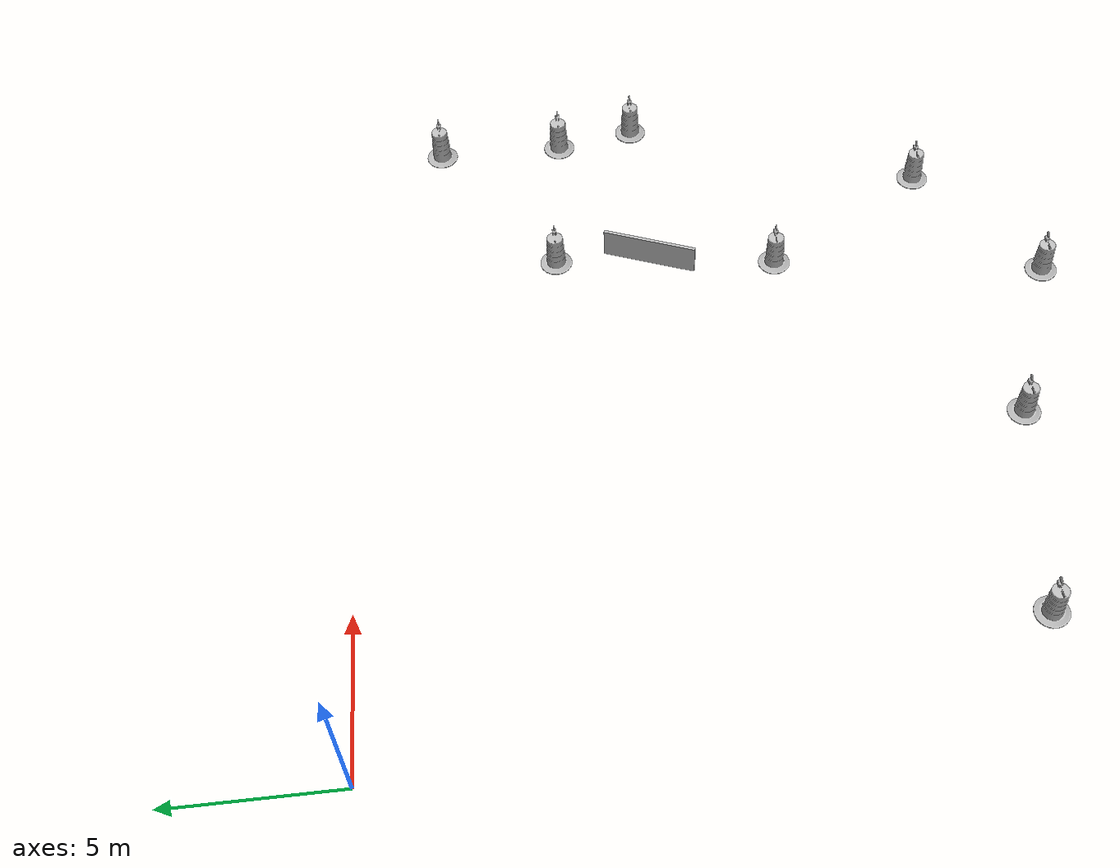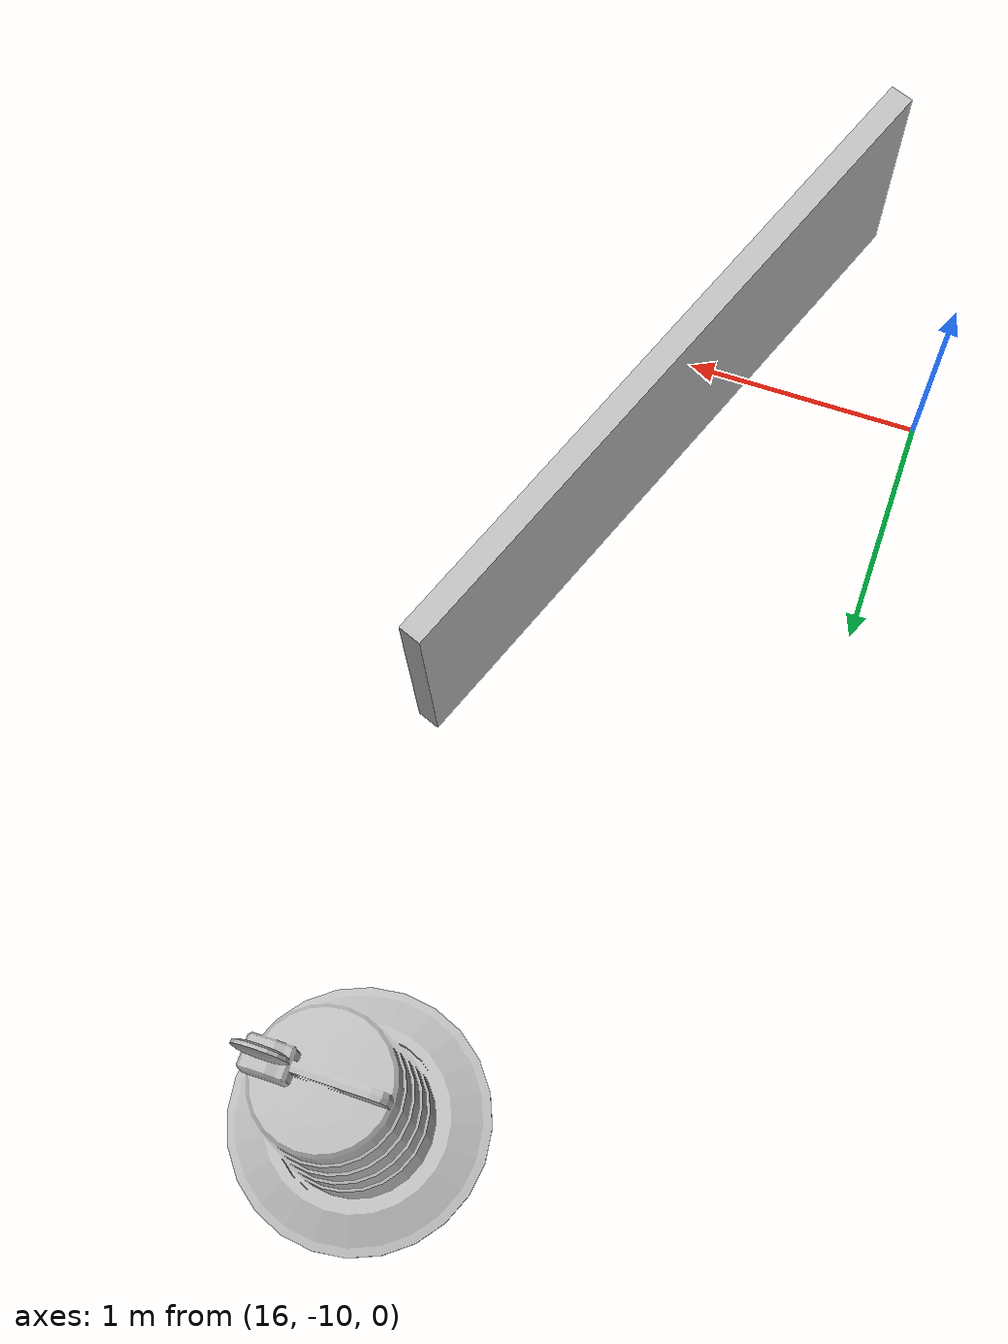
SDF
<sdf version="1.6">
 <world name="default">
  <model name="Construction Barrel_10">
   <link name="link">
    <inertial>
     <pose>0 0 0.4 0 -0 0</pose>
     <mass>500</mass>
     <inertia><ixx>51.2096</ixx><iyy>51.2096</iyy><izz>25</izz><ixy>0</ixy><ixz>0</ixz><iyz>0</iyz></inertia>
    </inertial>
    <collision name="collision">
     <geometry><mesh><uri>model://construction_barrel/meshes/construction_barrel.dae</uri></mesh></geometry>
    </collision>
    <visual name="visual">
     <geometry><mesh><uri>model://construction_barrel/meshes/construction_barrel.dae</uri></mesh></geometry>
    </visual>
    <velocity_decay><linear>0</linear><angular>0</angular></velocity_decay>
   </link>
   <pose>3 -19 -0 1e-06 -1e-06 0.05713</pose>
   <static>0</static>
  </model>
  <model name="Construction Barrel_11">
   <link name="link">
    <inertial>
     <pose>0 0 0.4 0 -0 0</pose>
     <mass>500</mass>
     <inertia><ixx>51.2096</ixx><iyy>51.2096</iyy><izz>25</izz><ixy>0</ixy><ixz>0</ixz><iyz>0</iyz></inertia>
    </inertial>
    <collision name="collision">
     <geometry><mesh><uri>model://construction_barrel/meshes/construction_barrel.dae</uri></mesh></geometry>
    </collision>
    <visual name="visual">
     <geometry><mesh><uri>model://construction_barrel/meshes/construction_barrel.dae</uri></mesh></geometry>
    </visual>
    <velocity_decay><linear>0</linear><angular>0</angular></velocity_decay>
   </link>
   <pose>9.75 -20 -1e-06 0 5e-06 0.03848</pose>
   <static>0</static>
  </model>
  <model name="Construction Barrel_12">
   <link name="link">
    <inertial>
     <pose>0 0 0.4 0 -0 0</pose>
     <mass>500</mass>
     <inertia><ixx>51.2096</ixx><iyy>51.2096</iyy><izz>25</izz><ixy>0</ixy><ixz>0</ixz><iyz>0</iyz></inertia>
    </inertial>
    <collision name="collision">
     <geometry><mesh><uri>model://construction_barrel/meshes/construction_barrel.dae</uri></mesh></geometry>
    </collision>
    <visual name="visual">
     <geometry><mesh><uri>model://construction_barrel/meshes/construction_barrel.dae</uri></mesh></geometry>
    </visual>
    <velocity_decay><linear>0</linear><angular>0</angular></velocity_decay>
   </link>
   <pose>15.25 -22 -4e-06 -5e-06 -7e-06 -0.002189</pose>
   <static>0</static>
  </model>
  <model name="Construction Barrel_13">
   <link name="link">
    <inertial>
     <pose>0 0 0.4 0 -0 0</pose>
     <mass>500</mass>
     <inertia><ixx>51.2096</ixx><iyy>51.2096</iyy><izz>25</izz><ixy>0</ixy><ixz>0</ixz><iyz>0</iyz></inertia>
    </inertial>
    <collision name="collision">
     <geometry><mesh><uri>model://construction_barrel/meshes/construction_barrel.dae</uri></mesh></geometry>
    </collision>
    <visual name="visual">
     <geometry><mesh><uri>model://construction_barrel/meshes/construction_barrel.dae</uri></mesh></geometry>
    </visual>
    <velocity_decay><linear>0</linear><angular>0</angular></velocity_decay>
   </link>
   <pose>19.75 -18.75 -4e-06 -5e-06 -7e-06 -0.002115</pose>
   <static>0</static>
  </model>
  <model name="Construction Barrel_14">
   <link name="link">
    <inertial>
     <pose>0 0 0.4 0 -0 0</pose>
     <mass>500</mass>
     <inertia><ixx>51.2096</ixx><iyy>51.2096</iyy><izz>25</izz><ixy>0</ixy><ixz>0</ixz><iyz>0</iyz></inertia>
    </inertial>
    <collision name="collision">
     <geometry><mesh><uri>model://construction_barrel/meshes/construction_barrel.dae</uri></mesh></geometry>
    </collision>
    <visual name="visual">
     <geometry><mesh><uri>model://construction_barrel/meshes/construction_barrel.dae</uri></mesh></geometry>
    </visual>
    <velocity_decay><linear>0</linear><angular>0</angular></velocity_decay>
   </link>
   <pose>16.5 -13.5 -0 -1e-06 -0 -0.047595</pose>
   <static>0</static>
  </model>
  <model name="Construction Barrel_15">
   <link name="link">
    <inertial>
     <pose>0 0 0.4 0 -0 0</pose>
     <mass>500</mass>
     <inertia><ixx>51.2096</ixx><iyy>51.2096</iyy><izz>25</izz><ixy>0</ixy><ixz>0</ixz><iyz>0</iyz></inertia>
    </inertial>
    <collision name="collision">
     <geometry><mesh><uri>model://construction_barrel/meshes/construction_barrel.dae</uri></mesh></geometry>
    </collision>
    <visual name="visual">
     <geometry><mesh><uri>model://construction_barrel/meshes/construction_barrel.dae</uri></mesh></geometry>
    </visual>
    <velocity_decay><linear>0</linear><angular>0</angular></velocity_decay>
   </link>
   <pose>23 -9.5 1e-06 3e-06 2e-06 -3e-05</pose>
   <static>0</static>
  </model>
  <model name="Construction Barrel_16">
   <link name="link">
    <inertial>
     <pose>0 0 0.4 0 -0 0</pose>
     <mass>500</mass>
     <inertia><ixx>51.2096</ixx><iyy>51.2096</iyy><izz>25</izz><ixy>0</ixy><ixz>0</ixz><iyz>0</iyz></inertia>
    </inertial>
    <collision name="collision">
     <geometry><mesh><uri>model://construction_barrel/meshes/construction_barrel.dae</uri></mesh></geometry>
    </collision>
    <visual name="visual">
     <geometry><mesh><uri>model://construction_barrel/meshes/construction_barrel.dae</uri></mesh></geometry>
    </visual>
    <velocity_decay><linear>0</linear><angular>0</angular></velocity_decay>
   </link>
   <pose>17.25 -6.5 -4e-06 -5e-06 -7e-06 -0.001843</pose>
   <static>0</static>
  </model>
  <model name="Construction Barrel_17">
   <link name="link">
    <inertial>
     <pose>0 0 0.4 0 -0 0</pose>
     <mass>500</mass>
     <inertia><ixx>51.2096</ixx><iyy>51.2096</iyy><izz>25</izz><ixy>0</ixy><ixz>0</ixz><iyz>0</iyz></inertia>
    </inertial>
    <collision name="collision">
     <geometry><mesh><uri>model://construction_barrel/meshes/construction_barrel.dae</uri></mesh></geometry>
    </collision>
    <visual name="visual">
     <geometry><mesh><uri>model://construction_barrel/meshes/construction_barrel.dae</uri></mesh></geometry>
    </visual>
    <velocity_decay><linear>0</linear><angular>0</angular></velocity_decay>
   </link>
   <pose>22.5 -7 -0 1e-06 -1e-06 -0.000916</pose>
   <static>0</static>
  </model>
  <model name="Construction Barrel_18">
   <link name="link">
    <inertial>
     <pose>0 0 0.4 0 -0 0</pose>
     <mass>500</mass>
     <inertia><ixx>51.2096</ixx><iyy>51.2096</iyy><izz>25</izz><ixy>0</ixy><ixz>0</ixz><iyz>0</iyz></inertia>
    </inertial>
    <collision name="collision">
     <geometry><mesh><uri>model://construction_barrel/meshes/construction_barrel.dae</uri></mesh></geometry>
    </collision>
    <visual name="visual">
     <geometry><mesh><uri>model://construction_barrel/meshes/construction_barrel.dae</uri></mesh></geometry>
    </visual>
    <velocity_decay><linear>0</linear><angular>0</angular></velocity_decay>
   </link>
   <pose>22.5 -3 -4e-06 -5e-06 -7e-06 -0.001749</pose>
   <static>0</static>
  </model>
  <model name="barricade_2">
   <static>1</static>
   <pose>17.0 -9.5 0.5 0 -0 1.2</pose>
   <link name="link">
    <collision name="collision"><geometry><box><size>3 0.1 1</size></box></geometry></collision>
    <visual name="visual"><geometry><box><size>3 0.1 1</size></box></geometry></visual>
   </link>
  </model>
 </world>
</sdf>
